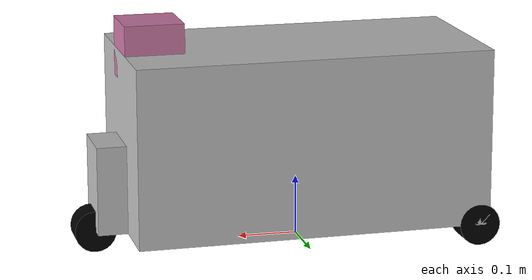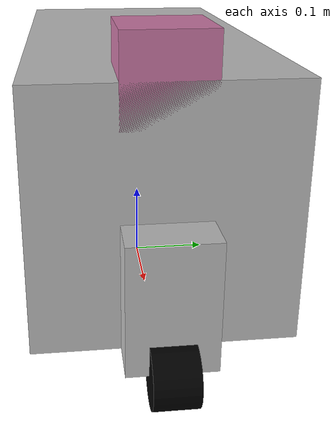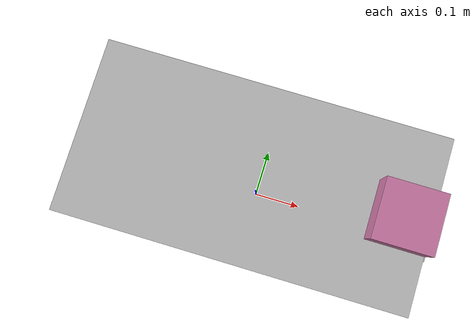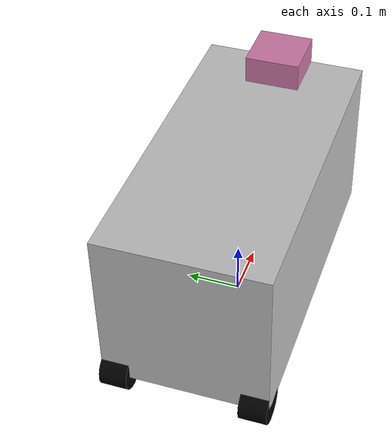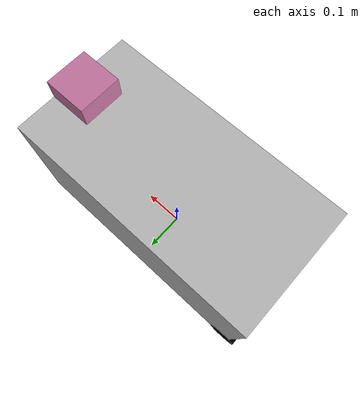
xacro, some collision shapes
<?xml version="1.0" encoding="UTF-8"?>
<robot xmlns:xacro="http://ros.org/wiki/xacro" name="tortoisebot">

   <xacro:include filename="$(find lidar_2d_mapping)/urdf/myrobot.gazebo" />

   <link name="base_link">
      <visual>
         <geometry>
            <box size="0.6 0.3 0.3" />
         </geometry>
         <material name="silver">
            <color rgba="0.75 0.75 0.75 1" />
         </material>
      </visual>
      <collision>
         <geometry>
            <box size="0.6 0.3 0.3" />
         </geometry>
      </collision>
      <inertial>
         <mass value="1.0" />
         <inertia ixx="0.015" iyy="0.0375" izz="0.0375" ixy="0" ixz="0" iyz="0" />
      </inertial>
   </link>

   <link name="base_footprint" />
   <joint name="base_footprint_joint" type="fixed">
      <child link="base_link" />
      <parent link="base_footprint" />
      <origin xyz="0 0 0.185" rpy="0 0 0" />
   </joint>

   <link name="front_caster">
      <visual>
         <geometry>
            <box size="0.1 0.1 0.15" />
         </geometry>
         <material name="silver">
            <color rgba="0.75 0.75 0.75 1" />
         </material>
      </visual>
      <collision>
         <geometry>
            <box size="0.1 0.1 0.15" />
         </geometry>
      </collision>
      <inertial>
         <mass value="0.05" />
         <inertia ixx="0.00013542" iyy="0.00013542" izz="0.00008333" ixy="0" ixz="0" iyz="0" />
      </inertial>
   </link>

   <joint name="front_caster_joint" type="continuous">
      <axis xyz="0 0 1" />
      <parent link="base_link" />
      <child link="front_caster" />
      <origin rpy="0 0 0" xyz="0.3 0 -0.075" />
   </joint>

   <link name="front_wheel">
      <visual>
         <geometry>
            <cylinder length="0.05" radius="0.035" />
         </geometry>
         <material name="black">
            <color rgba="0 0 0 1" />
         </material>
      </visual>
      <collision>
         <geometry>
            <cylinder length="0.05" radius="0.035" />
         </geometry>
      </collision>
      <inertial>
         <mass value="0.1" />
         <inertia ixx="5.1458e-5" iyy="5.1458e-5" izz="6.125e-5" ixy="0" ixz="0" iyz="0" />
      </inertial>
   </link>

   <joint name="front_wheel_joint" type="continuous">
      <axis xyz="0 0 1" />
      <parent link="front_caster" />
      <child link="front_wheel" />
      <origin rpy="-1.5708 0 0" xyz="0.05 0 -.075" />
   </joint>

   <link name="right_wheel">
      <visual>
         <geometry>
            <cylinder length="0.05" radius="0.035" />
         </geometry>
         <material name="black">
            <color rgba="0 0 0 1" />
         </material>
      </visual>
      <collision>
         <geometry>
            <cylinder length="0.05" radius="0.035" />
         </geometry>
      </collision>
      <inertial>
         <mass value="0.1" />
         <inertia ixx="5.1458e-5" iyy="5.1458e-5" izz="6.125e-5" ixy="0" ixz="0" iyz="0" />
      </inertial>
   </link>

   <joint name="right_wheel_joint" type="continuous">
      <axis xyz="0 0 1">
         <limit>
            <effort>20</effort>
         </limit>
      </axis>
      <max_linear_acceleration>0.033</max_linear_acceleration>
      <parent link="base_link" />
      <child link="right_wheel" />
      <origin rpy="-1.5708 0 0" xyz="-0.2825 -0.125 -.15" />
   </joint>

   <link name="left_wheel">
      <visual>
         <geometry>
            <cylinder length="0.05" radius="0.035" />
         </geometry>
         <material name="black">
            <color rgba="0 0 0 1" />
         </material>
      </visual>
      <collision>
         <geometry>
            <cylinder length="0.05" radius="0.035" />
         </geometry>
      </collision>
      <inertial>
         <mass value="0.1" />
         <inertia ixx="5.1458e-5" iyy="5.1458e-5" izz="6.125e-5" ixy="0" ixz="0" iyz="0" />
      </inertial>
   </link>

   <joint name="left_wheel_joint" type="continuous">
      <axis xyz="0 0 1">
         <limit>
            <effort>20</effort>
         </limit>
      </axis>
      <max_linear_acceleration>0.033</max_linear_acceleration>
      <parent link="base_link" />
      <child link="left_wheel" />
      <origin rpy="-1.5708 0 0" xyz="-0.2825 0.125 -.15" />
   </joint>

   <joint name="lidar_joint" type="fixed">
      <parent link="base_link" />
      <child link="lidar" />
      <origin xyz="0.25 0 0.15" rpy="0 0 0" />
   </joint>

   <link name="lidar">
      <visual>
         <origin xyz="0 0 0" rpy="0 0 0" />
         <geometry>
            <mesh filename="file://$(find lidar_2d_mapping)/meshes/lidar.dae" />
         </geometry>
      </visual>
      <collision>
         <origin xyz="0 0 0" rpy="0 0 0" />
         <geometry>
            <box size="0.1 0.1 0.1" />
         </geometry>
      </collision>
      <inertial>
         <mass value="1e-5" />
         <origin xyz="0 0 0" rpy="0 0 0" />
         <inertia ixx="1e-6" ixy="0" ixz="0" iyy="1e-6" iyz="0" izz="1e-6" />
      </inertial>
   </link>

</robot>
